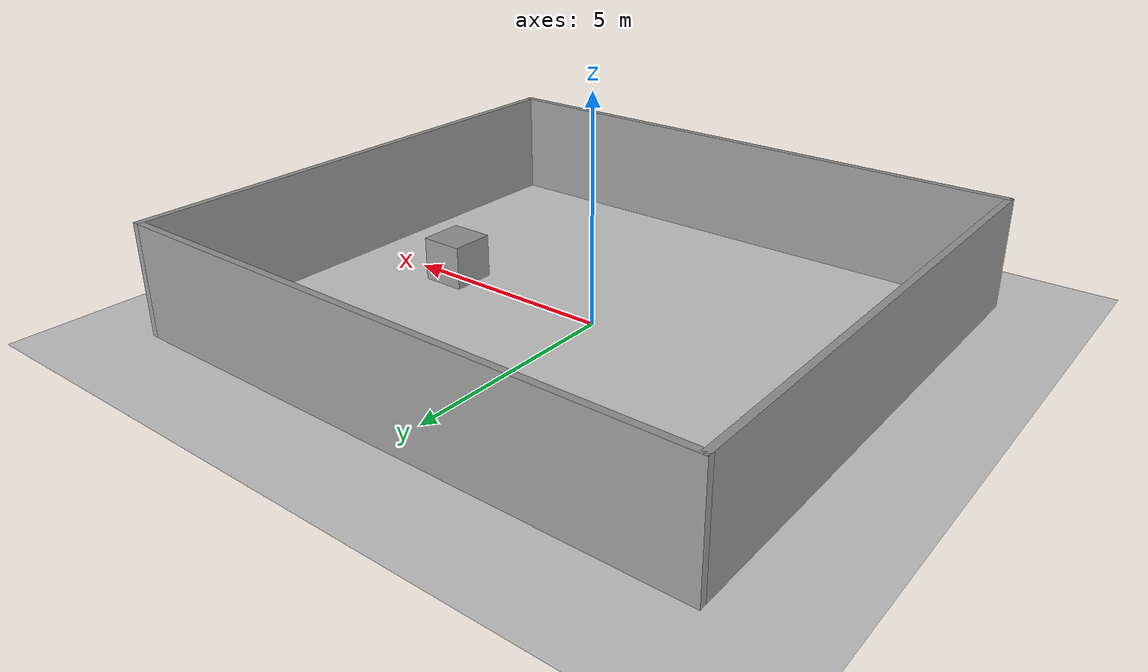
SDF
<sdf version="1.6">
 <world name="default">
  <light name="sun" type="directional">
   <pose>0 0 10 0 -0 0</pose>
   <diffuse>0.8 0.8 0.8 1</diffuse>
   <specular>0.2 0.2 0.2 1</specular>
   <attenuation>
    <range>1000</range>
    <constant>0.9</constant>
    <linear>0.01</linear>
    <quadratic>0.001</quadratic>
   </attenuation>
   <direction>-0.5 0.1 -0.9</direction>
  </light>
  <model name="ground_plane">
   <static>1</static>
   <link name="link">
    <collision name="collision">
     <geometry><plane><normal>0 0 1</normal><size>100 100</size></plane></geometry>
     <surface><friction><ode><mu>100</mu><mu2>50</mu2></ode></friction></surface>
    </collision>
    <visual name="visual">
     <cast_shadows>0</cast_shadows>
     <geometry><plane><normal>0 0 1</normal><size>100 100</size></plane></geometry>
     <material>
      <script><uri>file://media/materials/scripts/gazebo.material</uri><name>Gazebo/Grey</name></script>
     </material>
    </visual>
   </link>
  </model>
  <gravity>0 0 -9.8</gravity>
  <magnetic_field>6e-06 2.3e-05 -4.2e-05</magnetic_field>
  <atmosphere type="adiabatic"/>
  <physics name="default_physics" default="0" type="ode">
   <max_step_size>0.001</max_step_size>
   <real_time_factor>1</real_time_factor>
   <real_time_update_rate>1000</real_time_update_rate>
  </physics>
  <scene><ambient>0.4 0.4 0.4 1</ambient><background>0.7 0.7 0.7 1</background><shadows>1</shadows></scene>
  <spherical_coordinates>
   <surface_model>EARTH_WGS84</surface_model>
   <latitude_deg>0</latitude_deg>
   <longitude_deg>0</longitude_deg>
   <elevation>0</elevation>
   <heading_deg>0</heading_deg>
  </spherical_coordinates>
  <model name="a_empty">
   <pose>0.200367 -0.052895 0 0 -0 0</pose>
   <link name="Wall_5">
    <collision name="Wall_5_Collision">
     <geometry><box><size>13.25 0.15 2.5</size></box></geometry>
     <pose>0 0 1.25 0 -0 0</pose>
    </collision>
    <visual name="Wall_5_Visual">
     <pose>0 0 1.25 0 -0 0</pose>
     <geometry><box><size>13.25 0.15 2.5</size></box></geometry>
     <material>
      <script><uri>file://media/materials/scripts/gazebo.material</uri><name>Gazebo/Grey</name></script>
      <ambient>1 1 1 1</ambient>
     </material>
     <meta><layer>0</layer></meta>
    </visual>
    <pose>0 -5.925 0 0 -0 0</pose>
   </link>
   <link name="Wall_6">
    <collision name="Wall_6_Collision">
     <geometry><box><size>12 0.15 2.5</size></box></geometry>
     <pose>0 0 1.25 0 -0 0</pose>
    </collision>
    <visual name="Wall_6_Visual">
     <pose>0 0 1.25 0 -0 0</pose>
     <geometry><box><size>12 0.15 2.5</size></box></geometry>
     <material>
      <script><uri>file://media/materials/scripts/gazebo.material</uri><name>Gazebo/Grey</name></script>
      <ambient>1 1 1 1</ambient>
     </material>
     <meta><layer>0</layer></meta>
    </visual>
    <pose>6.55 0 0 0 -0 1.5708</pose>
   </link>
   <link name="Wall_7">
    <collision name="Wall_7_Collision">
     <geometry><box><size>13.25 0.15 2.5</size></box></geometry>
     <pose>0 0 1.25 0 -0 0</pose>
    </collision>
    <visual name="Wall_7_Visual">
     <pose>0 0 1.25 0 -0 0</pose>
     <geometry><box><size>13.25 0.15 2.5</size></box></geometry>
     <material>
      <script><uri>file://media/materials/scripts/gazebo.material</uri><name>Gazebo/Grey</name></script>
      <ambient>1 1 1 1</ambient>
     </material>
     <meta><layer>0</layer></meta>
    </visual>
    <pose>0 5.925 0 0 -0 3.14159</pose>
   </link>
   <link name="Wall_8">
    <collision name="Wall_8_Collision">
     <geometry><box><size>12 0.15 2.5</size></box></geometry>
     <pose>0 0 1.25 0 -0 0</pose>
    </collision>
    <visual name="Wall_8_Visual">
     <pose>0 0 1.25 0 -0 0</pose>
     <geometry><box><size>12 0.15 2.5</size></box></geometry>
     <material>
      <script><uri>file://media/materials/scripts/gazebo.material</uri><name>Gazebo/Grey</name></script>
      <ambient>1 1 1 1</ambient>
     </material>
     <meta><layer>0</layer></meta>
    </visual>
    <pose>-6.55 0 0 0 0 -1.5708</pose>
   </link>
   <static>1</static>
  </model>
  <model name="unit_box">
   <pose>3.91636 -0.027733 0.5 0 -0 0</pose>
   <link name="link">
    <inertial>
     <mass>1</mass>
     <inertia>
      <ixx>0.166667</ixx>
      <ixy>0</ixy>
      <ixz>0</ixz>
      <iyy>0.166667</iyy>
      <iyz>0</iyz>
      <izz>0.166667</izz>
     </inertia>
    </inertial>
    <collision name="collision"><geometry><box><size>1 1 1</size></box></geometry></collision>
    <visual name="visual">
     <geometry><box><size>1 1 1</size></box></geometry>
     <material>
      <script><name>Gazebo/Grey</name><uri>file://media/materials/scripts/gazebo.material</uri></script>
     </material>
    </visual>
   </link>
  </model>
  <plugin name="ActorPosesPlugin" filename="libActorPosesPlugin.so"/>
 </world>
</sdf>
